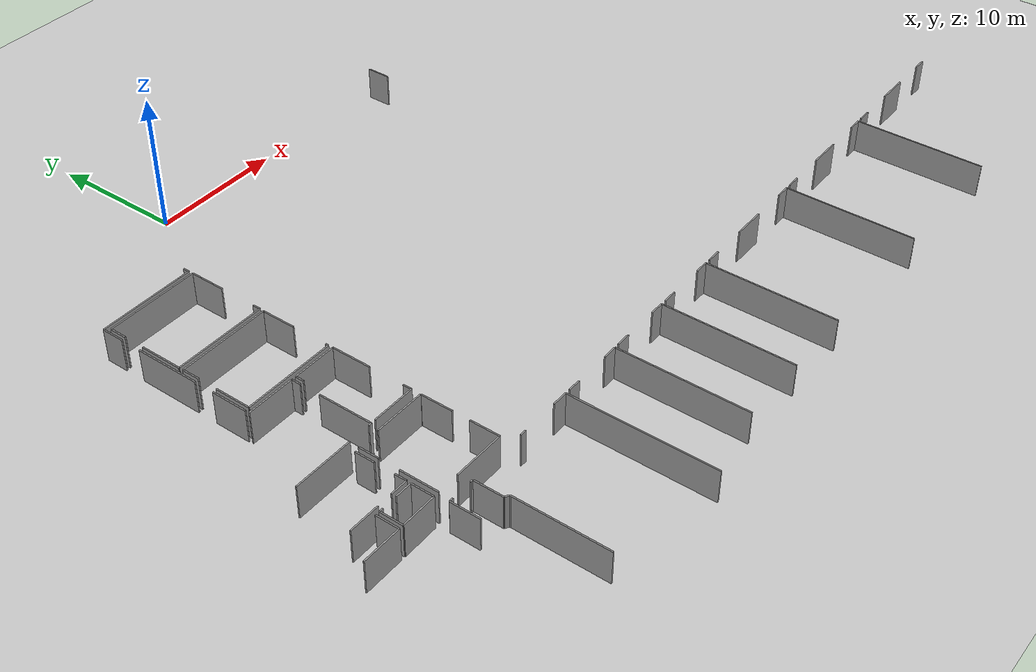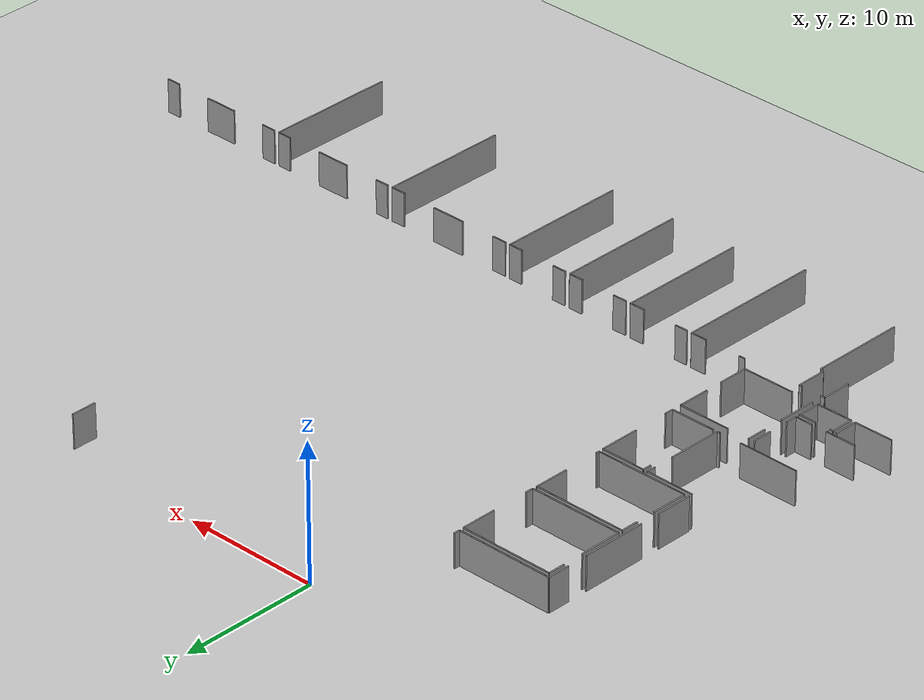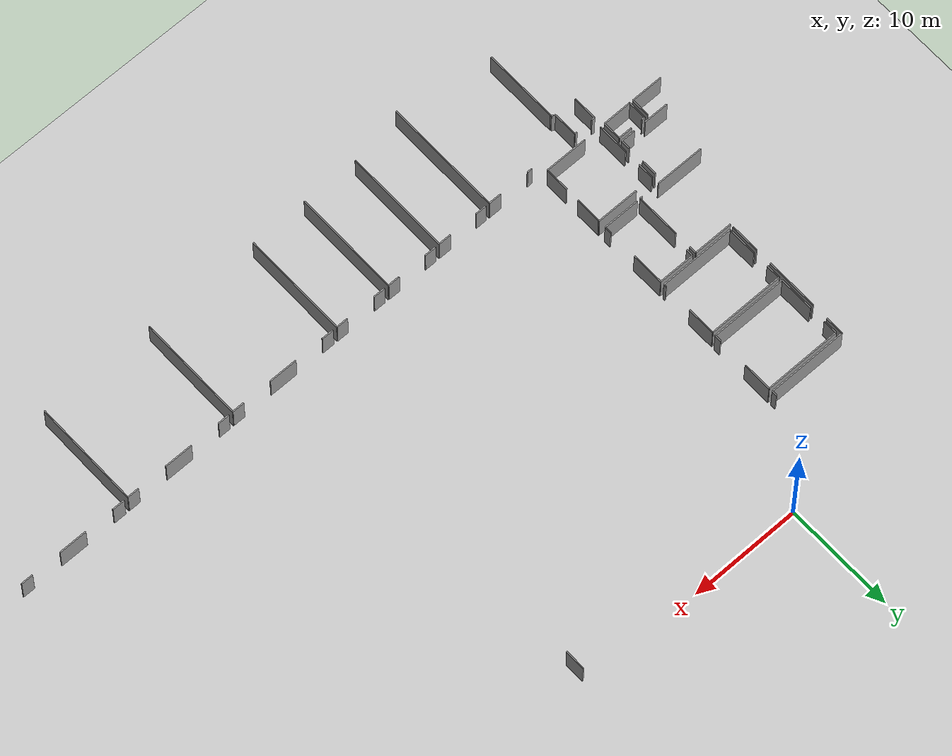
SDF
<sdf version="1.6">
 <world name="default">
  <model name="ground_plane">
   <static>1</static>
   <link name="link">
    <collision name="collision">
     <geometry><plane><normal>0 0 1</normal><size>100 100</size></plane></geometry>
     <surface><friction><ode><mu>100</mu><mu2>50</mu2></ode></friction></surface>
    </collision>
    <visual name="visual">
     <cast_shadows>0</cast_shadows>
     <geometry><plane><normal>0 0 1</normal><size>100 100</size></plane></geometry>
     <material>
      <script><uri>file://media/materials/scripts/gazebo.material</uri><name>Gazebo/Grey</name></script>
     </material>
    </visual>
   </link>
  </model>
  <model name="0510045922_A-40">
   <static>1</static>
   <link name="Wall_1295">
    <collision name="Wall_1295_Collision">
     <geometry><box><size>1.82423587723 0.1 2.5</size></box></geometry>
     <pose>0.912117938616 0 1.25 0 0 0</pose>
    </collision>
    <visual name="Wall_1295_Visual">
     <pose>0.912117938616 0 1.25 0 0 0</pose>
     <geometry><box><size>1.82423587723 0.1 2.5</size></box></geometry>
     <material>
      <script><uri>file://media/materials/scripts/gazebo.material</uri><name>Gazebo/Grey</name></script>
      <ambient>1 1 1 1</ambient>
     </material>
    </visual>
    <pose>155.149825253 -103.600279596 0 0 0 1.57079632679</pose>
   </link>
   <link name="Wall_1362">
    <collision name="Wall_1362_Collision">
     <geometry><box><size>2.65666899663 0.1 2.5</size></box></geometry>
     <pose>1.32833449832 0 1.25 0 0 0</pose>
    </collision>
    <visual name="Wall_1362_Visual">
     <pose>1.32833449832 0 1.25 0 0 0</pose>
     <geometry><box><size>2.65666899663 0.1 2.5</size></box></geometry>
     <material>
      <script><uri>file://media/materials/scripts/gazebo.material</uri><name>Gazebo/Grey</name></script>
      <ambient>1 1 1 1</ambient>
     </material>
    </visual>
    <pose>122.38830781 -120.836347461 0 0 0 1.57079632679</pose>
   </link>
   <link name="Wall_1363">
    <collision name="Wall_1363_Collision">
     <geometry><box><size>1.28919107835 0.1 2.5</size></box></geometry>
     <pose>0.644595539175 0 1.25 0 0 0</pose>
    </collision>
    <visual name="Wall_1363_Visual">
     <pose>0.644595539175 0 1.25 0 0 0</pose>
     <geometry><box><size>1.28919107835 0.1 2.5</size></box></geometry>
     <material>
      <script><uri>file://media/materials/scripts/gazebo.material</uri><name>Gazebo/Grey</name></script>
      <ambient>1 1 1 1</ambient>
     </material>
    </visual>
    <pose>122.38830781 -116.694007752 0 0 0 1.57079632679</pose>
   </link>
   <link name="Wall_1364">
    <collision name="Wall_1364_Collision">
     <geometry><box><size>6.90728855563 0.1 2.5</size></box></geometry>
     <pose>3.45364427782 0 1.25 0 0 0</pose>
    </collision>
    <visual name="Wall_1364_Visual">
     <pose>3.45364427782 0 1.25 0 0 0</pose>
     <geometry><box><size>6.90728855563 0.1 2.5</size></box></geometry>
     <material>
      <script><uri>file://media/materials/scripts/gazebo.material</uri><name>Gazebo/Grey</name></script>
      <ambient>1 1 1 1</ambient>
     </material>
    </visual>
    <pose>122.38830781 -115.404816674 0 0 0 0.0</pose>
   </link>
   <link name="Wall_1365">
    <collision name="Wall_1365_Collision">
     <geometry><box><size>2.5420346953 0.1 2.5</size></box></geometry>
     <pose>1.27101734765 0 1.25 0 0 0</pose>
    </collision>
    <visual name="Wall_1365_Visual">
     <pose>1.27101734765 0 1.25 0 0 0</pose>
     <geometry><box><size>2.5420346953 0.1 2.5</size></box></geometry>
     <material>
      <script><uri>file://media/materials/scripts/gazebo.material</uri><name>Gazebo/Grey</name></script>
      <ambient>1 1 1 1</ambient>
     </material>
    </visual>
    <pose>129.295596365 -115.404816674 0 0 0 -1.57079632679</pose>
   </link>
   <link name="Wall_1366">
    <collision name="Wall_1366_Collision">
     <geometry><box><size>0.224185041622 0.1 2.5</size></box></geometry>
     <pose>0.112092520811 0 1.25 0 0 0</pose>
    </collision>
    <visual name="Wall_1366_Visual">
     <pose>0.112092520811 0 1.25 0 0 0</pose>
     <geometry><box><size>0.224185041622 0.1 2.5</size></box></geometry>
     <material>
      <script><uri>file://media/materials/scripts/gazebo.material</uri><name>Gazebo/Grey</name></script>
      <ambient>1 1 1 1</ambient>
     </material>
    </visual>
    <pose>129.295596365 -120.597674271 0 0 0 -1.57079632679</pose>
   </link>
   <link name="Wall_1367">
    <collision name="Wall_1367_Collision">
     <geometry><box><size>6.90730375018 0.1 2.5</size></box></geometry>
     <pose>3.45365187509 0 1.25 0 0 0</pose>
    </collision>
    <visual name="Wall_1367_Visual">
     <pose>3.45365187509 0 1.25 0 0 0</pose>
     <geometry><box><size>6.90730375018 0.1 2.5</size></box></geometry>
     <material>
      <script><uri>file://media/materials/scripts/gazebo.material</uri><name>Gazebo/Grey</name></script>
      <ambient>1 1 1 1</ambient>
     </material>
    </visual>
    <pose>129.295596365 -120.821859312 0 0 0 -3.13949514057</pose>
   </link>
   <link name="Wall_1368">
    <collision name="Wall_1368_Collision">
     <geometry><box><size>3.14316578763 0.1 2.5</size></box></geometry>
     <pose>1.57158289382 0 1.25 0 0 0</pose>
    </collision>
    <visual name="Wall_1368_Visual">
     <pose>1.57158289382 0 1.25 0 0 0</pose>
     <geometry><box><size>3.14316578763 0.1 2.5</size></box></geometry>
     <material>
      <script><uri>file://media/materials/scripts/gazebo.material</uri><name>Gazebo/Grey</name></script>
      <ambient>1 1 1 1</ambient>
     </material>
    </visual>
    <pose>122.372802948 -115.076926987 0 0 0 1.57079632679</pose>
   </link>
   <link name="Wall_1369">
    <collision name="Wall_1369_Collision">
     <geometry><box><size>1.27089025863 0.1 2.5</size></box></geometry>
     <pose>0.635445129313 0 1.25 0 0 0</pose>
    </collision>
    <visual name="Wall_1369_Visual">
     <pose>0.635445129313 0 1.25 0 0 0</pose>
     <geometry><box><size>1.27089025863 0.1 2.5</size></box></geometry>
     <material>
      <script><uri>file://media/materials/scripts/gazebo.material</uri><name>Gazebo/Grey</name></script>
      <ambient>1 1 1 1</ambient>
     </material>
    </visual>
    <pose>122.372802948 -110.404880219 0 0 0 1.57079632679</pose>
   </link>
   <link name="Wall_1370">
    <collision name="Wall_1370_Collision">
     <geometry><box><size>6.95532820741 0.1 2.5</size></box></geometry>
     <pose>3.4776641037 0 1.25 0 0 0</pose>
    </collision>
    <visual name="Wall_1370_Visual">
     <pose>3.4776641037 0 1.25 0 0 0</pose>
     <geometry><box><size>6.95532820741 0.1 2.5</size></box></geometry>
     <material>
      <script><uri>file://media/materials/scripts/gazebo.material</uri><name>Gazebo/Grey</name></script>
      <ambient>1 1 1 1</ambient>
     </material>
    </visual>
    <pose>122.372802948 -109.13398996 0 0 0 0.0</pose>
   </link>
   <link name="Wall_1371">
    <collision name="Wall_1371_Collision">
     <geometry><box><size>2.62769269874 0.1 2.5</size></box></geometry>
     <pose>1.31384634937 0 1.25 0 0 0</pose>
    </collision>
    <visual name="Wall_1371_Visual">
     <pose>1.31384634937 0 1.25 0 0 0</pose>
     <geometry><box><size>2.62769269874 0.1 2.5</size></box></geometry>
     <material>
      <script><uri>file://media/materials/scripts/gazebo.material</uri><name>Gazebo/Grey</name></script>
      <ambient>1 1 1 1</ambient>
     </material>
    </visual>
    <pose>129.328131156 -109.13398996 0 0 0 -1.57079632679</pose>
   </link>
   <link name="Wall_1372">
    <collision name="Wall_1372_Collision">
     <geometry><box><size>0.592489038572 0.1 2.5</size></box></geometry>
     <pose>0.296244519286 0 1.25 0 0 0</pose>
    </collision>
    <visual name="Wall_1372_Visual">
     <pose>0.296244519286 0 1.25 0 0 0</pose>
     <geometry><box><size>0.592489038572 0.1 2.5</size></box></geometry>
     <material>
      <script><uri>file://media/materials/scripts/gazebo.material</uri><name>Gazebo/Grey</name></script>
      <ambient>1 1 1 1</ambient>
     </material>
    </visual>
    <pose>129.328131156 -114.484946305 0 0 0 -1.57079632679</pose>
   </link>
   <link name="Wall_1373">
    <collision name="Wall_1373_Collision">
     <geometry><box><size>6.95532822599 0.1 2.5</size></box></geometry>
     <pose>3.47766411299 0 1.25 0 0 0</pose>
    </collision>
    <visual name="Wall_1373_Visual">
     <pose>3.47766411299 0 1.25 0 0 0</pose>
     <geometry><box><size>6.95532822599 0.1 2.5</size></box></geometry>
     <material>
      <script><uri>file://media/materials/scripts/gazebo.material</uri><name>Gazebo/Grey</name></script>
      <ambient>1 1 1 1</ambient>
     </material>
    </visual>
    <pose>129.328131156 -115.077435343 0 0 0 3.14151956486</pose>
   </link>
   <link name="Wall_1394">
    <collision name="Wall_1394_Collision">
     <geometry><box><size>0.457012137002 0.1 2.5</size></box></geometry>
     <pose>0.228506068501 0 1.25 0 0 0</pose>
    </collision>
    <visual name="Wall_1394_Visual">
     <pose>0.228506068501 0 1.25 0 0 0</pose>
     <geometry><box><size>0.457012137002 0.1 2.5</size></box></geometry>
     <material>
      <script><uri>file://media/materials/scripts/gazebo.material</uri><name>Gazebo/Grey</name></script>
      <ambient>1 1 1 1</ambient>
     </material>
    </visual>
    <pose>129.304746775 -108.341716973 0 0 0 -1.57079632679</pose>
   </link>
   <link name="Wall_1395">
    <collision name="Wall_1395_Collision">
     <geometry><box><size>7.23873673508 0.1 2.5</size></box></geometry>
     <pose>3.61936836754 0 1.25 0 0 0</pose>
    </collision>
    <visual name="Wall_1395_Visual">
     <pose>3.61936836754 0 1.25 0 0 0</pose>
     <geometry><box><size>7.23873673508 0.1 2.5</size></box></geometry>
     <material>
      <script><uri>file://media/materials/scripts/gazebo.material</uri><name>Gazebo/Grey</name></script>
      <ambient>1 1 1 1</ambient>
     </material>
    </visual>
    <pose>129.304746775 -108.79872911 0 0 0 3.14159265359</pose>
   </link>
   <link name="Wall_1396">
    <collision name="Wall_1396_Collision">
     <geometry><box><size>1.64427781661 0.1 2.5</size></box></geometry>
     <pose>0.822138908305 0 1.25 0 0 0</pose>
    </collision>
    <visual name="Wall_1396_Visual">
     <pose>0.822138908305 0 1.25 0 0 0</pose>
     <geometry><box><size>1.64427781661 0.1 2.5</size></box></geometry>
     <material>
      <script><uri>file://media/materials/scripts/gazebo.material</uri><name>Gazebo/Grey</name></script>
      <ambient>1 1 1 1</ambient>
     </material>
    </visual>
    <pose>122.06601004 -108.79872911 0 0 0 -1.57079632679</pose>
   </link>
   <link name="Wall_1397">
    <collision name="Wall_1397_Collision">
     <geometry><box><size>4.76939696257 0.1 2.5</size></box></geometry>
     <pose>2.38469848129 0 1.25 0 0 0</pose>
    </collision>
    <visual name="Wall_1397_Visual">
     <pose>2.38469848129 0 1.25 0 0 0</pose>
     <geometry><box><size>4.76939696257 0.1 2.5</size></box></geometry>
     <material>
      <script><uri>file://media/materials/scripts/gazebo.material</uri><name>Gazebo/Grey</name></script>
      <ambient>1 1 1 1</ambient>
     </material>
    </visual>
    <pose>122.06601004 -111.964516744 0 0 0 -1.57079632679</pose>
   </link>
   <link name="Wall_1398">
    <collision name="Wall_1398_Collision">
     <geometry><box><size>2.66048166741 0.1 2.5</size></box></geometry>
     <pose>1.3302408337 0 1.25 0 0 0</pose>
    </collision>
    <visual name="Wall_1398_Visual">
     <pose>1.3302408337 0 1.25 0 0 0</pose>
     <geometry><box><size>2.66048166741 0.1 2.5</size></box></geometry>
     <material>
      <script><uri>file://media/materials/scripts/gazebo.material</uri><name>Gazebo/Grey</name></script>
      <ambient>1 1 1 1</ambient>
     </material>
    </visual>
    <pose>122.06601004 -118.218313529 0 0 0 -1.57079632679</pose>
   </link>
   <link name="Wall_1410">
    <collision name="Wall_1410_Collision">
     <geometry><box><size>3.30914405541 0.1 2.5</size></box></geometry>
     <pose>1.65457202771 0 1.25 0 0 0</pose>
    </collision>
    <visual name="Wall_1410_Visual">
     <pose>1.65457202771 0 1.25 0 0 0</pose>
     <geometry><box><size>3.30914405541 0.1 2.5</size></box></geometry>
     <material>
      <script><uri>file://media/materials/scripts/gazebo.material</uri><name>Gazebo/Grey</name></script>
      <ambient>1 1 1 1</ambient>
     </material>
    </visual>
    <pose>129.3172015 -127.382449006 0 0 0 3.14159265359</pose>
   </link>
   <link name="Wall_1411">
    <collision name="Wall_1411_Collision">
     <geometry><box><size>0.641799580606 0.1 2.5</size></box></geometry>
     <pose>0.320899790303 0 1.25 0 0 0</pose>
    </collision>
    <visual name="Wall_1411_Visual">
     <pose>0.320899790303 0 1.25 0 0 0</pose>
     <geometry><box><size>0.641799580606 0.1 2.5</size></box></geometry>
     <material>
      <script><uri>file://media/materials/scripts/gazebo.material</uri><name>Gazebo/Grey</name></script>
      <ambient>1 1 1 1</ambient>
     </material>
    </visual>
    <pose>126.008057444 -121.812645358 0 0 0 1.57079632679</pose>
   </link>
   <link name="Wall_1412">
    <collision name="Wall_1412_Collision">
     <geometry><box><size>3.30888987736 0.1 2.5</size></box></geometry>
     <pose>1.65444493868 0 1.25 0 0 0</pose>
    </collision>
    <visual name="Wall_1412_Visual">
     <pose>1.65444493868 0 1.25 0 0 0</pose>
     <geometry><box><size>3.30888987736 0.1 2.5</size></box></geometry>
     <material>
      <script><uri>file://media/materials/scripts/gazebo.material</uri><name>Gazebo/Grey</name></script>
      <ambient>1 1 1 1</ambient>
     </material>
    </visual>
    <pose>126.008057444 -121.170845777 0 0 0 0.0</pose>
   </link>
   <link name="Wall_1413">
    <collision name="Wall_1413_Collision">
     <geometry><box><size>2.93651903158 0.1 2.5</size></box></geometry>
     <pose>1.46825951579 0 1.25 0 0 0</pose>
    </collision>
    <visual name="Wall_1413_Visual">
     <pose>1.46825951579 0 1.25 0 0 0</pose>
     <geometry><box><size>2.93651903158 0.1 2.5</size></box></geometry>
     <material>
      <script><uri>file://media/materials/scripts/gazebo.material</uri><name>Gazebo/Grey</name></script>
      <ambient>1 1 1 1</ambient>
     </material>
    </visual>
    <pose>129.316947322 -121.170845777 0 0 0 -1.57079632679</pose>
   </link>
   <link name="Wall_1414">
    <collision name="Wall_1414_Collision">
     <geometry><box><size>0.637732782432 0.1 2.5</size></box></geometry>
     <pose>0.318866391216 0 1.25 0 0 0</pose>
    </collision>
    <visual name="Wall_1414_Visual">
     <pose>0.318866391216 0 1.25 0 0 0</pose>
     <geometry><box><size>0.637732782432 0.1 2.5</size></box></geometry>
     <material>
      <script><uri>file://media/materials/scripts/gazebo.material</uri><name>Gazebo/Grey</name></script>
      <ambient>1 1 1 1</ambient>
     </material>
    </visual>
    <pose>129.316947322 -126.744716274 0 0 0 -1.57039776165</pose>
   </link>
   <link name="Wall_1421">
    <collision name="Wall_1421_Collision">
     <geometry><box><size>3.61009086865 0.1 2.5</size></box></geometry>
     <pose>1.80504543433 0 1.25 0 0 0</pose>
    </collision>
    <visual name="Wall_1421_Visual">
     <pose>1.80504543433 0 1.25 0 0 0</pose>
     <geometry><box><size>3.61009086865 0.1 2.5</size></box></geometry>
     <material>
      <script><uri>file://media/materials/scripts/gazebo.material</uri><name>Gazebo/Grey</name></script>
      <ambient>1 1 1 1</ambient>
     </material>
    </visual>
    <pose>122.072364491 -121.16144119 0 0 0 0.0</pose>
   </link>
   <link name="Wall_1422">
    <collision name="Wall_1422_Collision">
     <geometry><box><size>0.690855944589 0.1 2.5</size></box></geometry>
     <pose>0.345427972295 0 1.25 0 0 0</pose>
    </collision>
    <visual name="Wall_1422_Visual">
     <pose>0.345427972295 0 1.25 0 0 0</pose>
     <geometry><box><size>0.690855944589 0.1 2.5</size></box></geometry>
     <material>
      <script><uri>file://media/materials/scripts/gazebo.material</uri><name>Gazebo/Grey</name></script>
      <ambient>1 1 1 1</ambient>
     </material>
    </visual>
    <pose>125.68245536 -121.16144119 0 0 0 -1.57079632679</pose>
   </link>
   <link name="Wall_1423">
    <collision name="Wall_1423_Collision">
     <geometry><box><size>4.01906335388 0.1 2.5</size></box></geometry>
     <pose>2.00953167694 0 1.25 0 0 0</pose>
    </collision>
    <visual name="Wall_1423_Visual">
     <pose>2.00953167694 0 1.25 0 0 0</pose>
     <geometry><box><size>4.01906335388 0.1 2.5</size></box></geometry>
     <material>
      <script><uri>file://media/materials/scripts/gazebo.material</uri><name>Gazebo/Grey</name></script>
      <ambient>1 1 1 1</ambient>
     </material>
    </visual>
    <pose>125.68245536 -123.382449006 0 0 0 -1.57079632679</pose>
   </link>
   <link name="Wall_1424">
    <collision name="Wall_1424_Collision">
     <geometry><box><size>0.240960793036 0.1 2.5</size></box></geometry>
     <pose>0.120480396518 0 1.25 0 0 0</pose>
    </collision>
    <visual name="Wall_1424_Visual">
     <pose>0.120480396518 0 1.25 0 0 0</pose>
     <geometry><box><size>0.240960793036 0.1 2.5</size></box></geometry>
     <material>
      <script><uri>file://media/materials/scripts/gazebo.material</uri><name>Gazebo/Grey</name></script>
      <ambient>1 1 1 1</ambient>
     </material>
    </visual>
    <pose>125.68245536 -127.401512359 0 0 0 3.14159265359</pose>
   </link>
   <link name="Wall_1425">
    <collision name="Wall_1425_Collision">
     <geometry><box><size>4.46007218897 0.1 2.5</size></box></geometry>
     <pose>2.23003609449 0 1.25 0 0 0</pose>
    </collision>
    <visual name="Wall_1425_Visual">
     <pose>2.23003609449 0 1.25 0 0 0</pose>
     <geometry><box><size>4.46007218897 0.1 2.5</size></box></geometry>
     <material>
      <script><uri>file://media/materials/scripts/gazebo.material</uri><name>Gazebo/Grey</name></script>
      <ambient>1 1 1 1</ambient>
     </material>
    </visual>
    <pose>123.782728601 -127.401512359 0 0 0 3.13948403416</pose>
   </link>
   <link name="Wall_1429">
    <collision name="Wall_1429_Collision">
     <geometry><box><size>1.69130075618 0.1 2.5</size></box></geometry>
     <pose>0.84565037809 0 1.25 0 0 0</pose>
    </collision>
    <visual name="Wall_1429_Visual">
     <pose>0.84565037809 0 1.25 0 0 0</pose>
     <geometry><box><size>1.69130075618 0.1 2.5</size></box></geometry>
     <material>
      <script><uri>file://media/materials/scripts/gazebo.material</uri><name>Gazebo/Grey</name></script>
      <ambient>1 1 1 1</ambient>
     </material>
    </visual>
    <pose>120.367846476 -132.261650886 0 0 0 -1.57079632679</pose>
   </link>
   <link name="Wall_1430">
    <collision name="Wall_1430_Collision">
     <geometry><box><size>2.91746056063 0.1 2.5</size></box></geometry>
     <pose>1.45873028031 0 1.25 0 0 0</pose>
    </collision>
    <visual name="Wall_1430_Visual">
     <pose>1.45873028031 0 1.25 0 0 0</pose>
     <geometry><box><size>2.91746056063 0.1 2.5</size></box></geometry>
     <material>
      <script><uri>file://media/materials/scripts/gazebo.material</uri><name>Gazebo/Grey</name></script>
      <ambient>1 1 1 1</ambient>
     </material>
    </visual>
    <pose>120.367846476 -133.952951643 0 0 0 -3.1397630686</pose>
   </link>
   <link name="Wall_1431">
    <collision name="Wall_1431_Collision">
     <geometry><box><size>1.68672555125 0.1 2.5</size></box></geometry>
     <pose>0.843362775624 0 1.25 0 0 0</pose>
    </collision>
    <visual name="Wall_1431_Visual">
     <pose>0.843362775624 0 1.25 0 0 0</pose>
     <geometry><box><size>1.68672555125 0.1 2.5</size></box></geometry>
     <material>
      <script><uri>file://media/materials/scripts/gazebo.material</uri><name>Gazebo/Grey</name></script>
      <ambient>1 1 1 1</ambient>
     </material>
    </visual>
    <pose>120.688873356 -133.962864587 0 0 0 1.57079632679</pose>
   </link>
   <link name="Wall_1432">
    <collision name="Wall_1432_Collision">
     <geometry><box><size>0.284171061829 0.1 2.5</size></box></geometry>
     <pose>0.142085530914 0 1.25 0 0 0</pose>
    </collision>
    <visual name="Wall_1432_Visual">
     <pose>0.142085530914 0 1.25 0 0 0</pose>
     <geometry><box><size>0.284171061829 0.1 2.5</size></box></geometry>
     <material>
      <script><uri>file://media/materials/scripts/gazebo.material</uri><name>Gazebo/Grey</name></script>
      <ambient>1 1 1 1</ambient>
     </material>
    </visual>
    <pose>120.688873356 -132.276139035 0 0 0 0.0</pose>
   </link>
   <link name="Wall_1433">
    <collision name="Wall_1433_Collision">
     <geometry><box><size>1.25665628773 0.1 2.5</size></box></geometry>
     <pose>0.628328143865 0 1.25 0 0 0</pose>
    </collision>
    <visual name="Wall_1433_Visual">
     <pose>0.628328143865 0 1.25 0 0 0</pose>
     <geometry><box><size>1.25665628773 0.1 2.5</size></box></geometry>
     <material>
      <script><uri>file://media/materials/scripts/gazebo.material</uri><name>Gazebo/Grey</name></script>
      <ambient>1 1 1 1</ambient>
     </material>
    </visual>
    <pose>122.092190379 -132.276139035 0 0 0 0.0</pose>
   </link>
   <link name="Wall_1434">
    <collision name="Wall_1434_Collision">
     <geometry><box><size>1.66207028023 0.1 2.5</size></box></geometry>
     <pose>0.831035140116 0 1.25 0 0 0</pose>
    </collision>
    <visual name="Wall_1434_Visual">
     <pose>0.831035140116 0 1.25 0 0 0</pose>
     <geometry><box><size>1.66207028023 0.1 2.5</size></box></geometry>
     <material>
      <script><uri>file://media/materials/scripts/gazebo.material</uri><name>Gazebo/Grey</name></script>
      <ambient>1 1 1 1</ambient>
     </material>
    </visual>
    <pose>123.348846667 -132.276139035 0 0 0 -1.57079632679</pose>
   </link>
   <link name="Wall_1435">
    <collision name="Wall_1435_Collision">
     <geometry><box><size>2.6600875736 0.1 2.5</size></box></geometry>
     <pose>1.3300437868 0 1.25 0 0 0</pose>
    </collision>
    <visual name="Wall_1435_Visual">
     <pose>1.3300437868 0 1.25 0 0 0</pose>
     <geometry><box><size>2.6600875736 0.1 2.5</size></box></geometry>
     <material>
      <script><uri>file://media/materials/scripts/gazebo.material</uri><name>Gazebo/Grey</name></script>
      <ambient>1 1 1 1</ambient>
     </material>
    </visual>
    <pose>123.348846667 -133.938209316 0 0 0 -3.13232392714</pose>
   </link>
   <link name="Wall_1440">
    <collision name="Wall_1440_Collision">
     <geometry><box><size>1.42746393849 0.1 2.5</size></box></geometry>
     <pose>0.713731969244 0 1.25 0 0 0</pose>
    </collision>
    <visual name="Wall_1440_Visual">
     <pose>0.713731969244 0 1.25 0 0 0</pose>
     <geometry><box><size>1.42746393849 0.1 2.5</size></box></geometry>
     <material>
      <script><uri>file://media/materials/scripts/gazebo.material</uri><name>Gazebo/Grey</name></script>
      <ambient>1 1 1 1</ambient>
     </material>
    </visual>
    <pose>123.370960158 -128.177263773 0 0 0 -1.57079632679</pose>
   </link>
   <link name="Wall_1441">
    <collision name="Wall_1441_Collision">
     <geometry><box><size>0.850988117176 0.1 2.5</size></box></geometry>
     <pose>0.425494058588 0 1.25 0 0 0</pose>
    </collision>
    <visual name="Wall_1441_Visual">
     <pose>0.425494058588 0 1.25 0 0 0</pose>
     <geometry><box><size>0.850988117176 0.1 2.5</size></box></geometry>
     <material>
      <script><uri>file://media/materials/scripts/gazebo.material</uri><name>Gazebo/Grey</name></script>
      <ambient>1 1 1 1</ambient>
     </material>
    </visual>
    <pose>123.370960158 -131.102344793 0 0 0 -1.57079632679</pose>
   </link>
   <link name="Wall_1442">
    <collision name="Wall_1442_Collision">
     <geometry><box><size>1.29859566626 0.1 2.5</size></box></geometry>
     <pose>0.649297833132 0 1.25 0 0 0</pose>
    </collision>
    <visual name="Wall_1442_Visual">
     <pose>0.649297833132 0 1.25 0 0 0</pose>
     <geometry><box><size>1.29859566626 0.1 2.5</size></box></geometry>
     <material>
      <script><uri>file://media/materials/scripts/gazebo.material</uri><name>Gazebo/Grey</name></script>
      <ambient>1 1 1 1</ambient>
     </material>
    </visual>
    <pose>123.370960158 -131.95333291 0 0 0 3.14159265359</pose>
   </link>
   <link name="Wall_1443">
    <collision name="Wall_1443_Collision">
     <geometry><box><size>2.28506068501 0.1 2.5</size></box></geometry>
     <pose>1.1425303425 0 1.25 0 0 0</pose>
    </collision>
    <visual name="Wall_1443_Visual">
     <pose>1.1425303425 0 1.25 0 0 0</pose>
     <geometry><box><size>2.28506068501 0.1 2.5</size></box></geometry>
     <material>
      <script><uri>file://media/materials/scripts/gazebo.material</uri><name>Gazebo/Grey</name></script>
      <ambient>1 1 1 1</ambient>
     </material>
    </visual>
    <pose>120.946864078 -131.95333291 0 0 0 3.14159265359</pose>
   </link>
   <link name="Wall_1447">
    <collision name="Wall_1447_Collision">
     <geometry><box><size>2.30869924382 0.1 2.5</size></box></geometry>
     <pose>1.15434962191 0 1.25 0 0 0</pose>
    </collision>
    <visual name="Wall_1447_Visual">
     <pose>1.15434962191 0 1.25 0 0 0</pose>
     <geometry><box><size>2.30869924382 0.1 2.5</size></box></geometry>
     <material>
      <script><uri>file://media/materials/scripts/gazebo.material</uri><name>Gazebo/Grey</name></script>
      <ambient>1 1 1 1</ambient>
     </material>
    </visual>
    <pose>129.300425748 -128.158962954 0 0 0 -1.57079632679</pose>
   </link>
   <link name="Wall_1448">
    <collision name="Wall_1448_Collision">
     <geometry><box><size>2.17881425939 0.1 2.5</size></box></geometry>
     <pose>1.08940712969 0 1.25 0 0 0</pose>
    </collision>
    <visual name="Wall_1448_Visual">
     <pose>1.08940712969 0 1.25 0 0 0</pose>
     <geometry><box><size>2.17881425939 0.1 2.5</size></box></geometry>
     <material>
      <script><uri>file://media/materials/scripts/gazebo.material</uri><name>Gazebo/Grey</name></script>
      <ambient>1 1 1 1</ambient>
     </material>
    </visual>
    <pose>129.300425748 -131.761174303 0 0 0 -1.57079632679</pose>
   </link>
   <link name="Wall_1449">
    <collision name="Wall_1449_Collision">
     <geometry><box><size>3.88867001334 0.1 2.5</size></box></geometry>
     <pose>1.94433500667 0 1.25 0 0 0</pose>
    </collision>
    <visual name="Wall_1449_Visual">
     <pose>1.94433500667 0 1.25 0 0 0</pose>
     <geometry><box><size>3.88867001334 0.1 2.5</size></box></geometry>
     <material>
      <script><uri>file://media/materials/scripts/gazebo.material</uri><name>Gazebo/Grey</name></script>
      <ambient>1 1 1 1</ambient>
     </material>
    </visual>
    <pose>129.300425748 -133.939988562 0 0 0 3.14159265359</pose>
   </link>
   <link name="Wall_1450">
    <collision name="Wall_1450_Collision">
     <geometry><box><size>2.84755671348 0.1 2.5</size></box></geometry>
     <pose>1.42377835674 0 1.25 0 0 0</pose>
    </collision>
    <visual name="Wall_1450_Visual">
     <pose>1.42377835674 0 1.25 0 0 0</pose>
     <geometry><box><size>2.84755671348 0.1 2.5</size></box></geometry>
     <material>
      <script><uri>file://media/materials/scripts/gazebo.material</uri><name>Gazebo/Grey</name></script>
      <ambient>1 1 1 1</ambient>
     </material>
    </visual>
    <pose>123.766461206 -133.939988562 0 0 0 1.57079632679</pose>
   </link>
   <link name="Wall_1451">
    <collision name="Wall_1451_Collision">
     <geometry><box><size>1.47347016585 0.1 2.5</size></box></geometry>
     <pose>0.736735082926 0 1.25 0 0 0</pose>
    </collision>
    <visual name="Wall_1451_Visual">
     <pose>0.736735082926 0 1.25 0 0 0</pose>
     <geometry><box><size>1.47347016585 0.1 2.5</size></box></geometry>
     <material>
      <script><uri>file://media/materials/scripts/gazebo.material</uri><name>Gazebo/Grey</name></script>
      <ambient>1 1 1 1</ambient>
     </material>
    </visual>
    <pose>123.766461206 -129.56583847 0 0 0 1.57079632679</pose>
   </link>
   <link name="Wall_1452">
    <collision name="Wall_1452_Collision">
     <geometry><box><size>3.84698481286 0.1 2.5</size></box></geometry>
     <pose>1.92349240643 0 1.25 0 0 0</pose>
    </collision>
    <visual name="Wall_1452_Visual">
     <pose>1.92349240643 0 1.25 0 0 0</pose>
     <geometry><box><size>3.84698481286 0.1 2.5</size></box></geometry>
     <material>
      <script><uri>file://media/materials/scripts/gazebo.material</uri><name>Gazebo/Grey</name></script>
      <ambient>1 1 1 1</ambient>
     </material>
    </visual>
    <pose>125.451661689 -128.092368304 0 0 0 0.0</pose>
   </link>
   <link name="Wall_1453">
    <collision name="Wall_1453_Collision">
     <geometry><box><size>0.0666184138701 0.1 2.5</size></box></geometry>
     <pose>0.0333092069351 0 1.25 0 0 0</pose>
    </collision>
    <visual name="Wall_1453_Visual">
     <pose>0.0333092069351 0 1.25 0 0 0</pose>
     <geometry><box><size>0.0666184138701 0.1 2.5</size></box></geometry>
     <material>
      <script><uri>file://media/materials/scripts/gazebo.material</uri><name>Gazebo/Grey</name></script>
      <ambient>1 1 1 1</ambient>
     </material>
    </visual>
    <pose>129.298646502 -128.092368304 0 0 0 -1.54408512407</pose>
   </link>
   <link name="Wall_1459">
    <collision name="Wall_1459_Collision">
     <geometry><box><size>2.16864713732 0.1 2.5</size></box></geometry>
     <pose>1.08432356866 0 1.25 0 0 0</pose>
    </collision>
    <visual name="Wall_1459_Visual">
     <pose>1.08432356866 0 1.25 0 0 0</pose>
     <geometry><box><size>2.16864713732 0.1 2.5</size></box></geometry>
     <material>
      <script><uri>file://media/materials/scripts/gazebo.material</uri><name>Gazebo/Grey</name></script>
      <ambient>1 1 1 1</ambient>
     </material>
    </visual>
    <pose>123.575065133 -137.006646756 0 0 0 1.57079632679</pose>
   </link>
   <link name="Wall_1460">
    <collision name="Wall_1460_Collision">
     <geometry><box><size>0.294846540001 0.1 2.5</size></box></geometry>
     <pose>0.147423270001 0 1.25 0 0 0</pose>
    </collision>
    <visual name="Wall_1460_Visual">
     <pose>0.147423270001 0 1.25 0 0 0</pose>
     <geometry><box><size>0.294846540001 0.1 2.5</size></box></geometry>
     <material>
      <script><uri>file://media/materials/scripts/gazebo.material</uri><name>Gazebo/Grey</name></script>
      <ambient>1 1 1 1</ambient>
     </material>
    </visual>
    <pose>123.575065133 -134.837999619 0 0 0 0.0</pose>
   </link>
   <link name="Wall_1461">
    <collision name="Wall_1461_Collision">
     <geometry><box><size>0.209442714622 0.1 2.5</size></box></geometry>
     <pose>0.104721357311 0 1.25 0 0 0</pose>
    </collision>
    <visual name="Wall_1461_Visual">
     <pose>0.104721357311 0 1.25 0 0 0</pose>
     <geometry><box><size>0.209442714622 0.1 2.5</size></box></geometry>
     <material>
      <script><uri>file://media/materials/scripts/gazebo.material</uri><name>Gazebo/Grey</name></script>
      <ambient>1 1 1 1</ambient>
     </material>
    </visual>
    <pose>125.422939569 -134.837999619 0 0 0 0.0</pose>
   </link>
   <link name="Wall_1462">
    <collision name="Wall_1462_Collision">
     <geometry><box><size>2.18567706679 0.1 2.5</size></box></geometry>
     <pose>1.09283853339 0 1.25 0 0 0</pose>
    </collision>
    <visual name="Wall_1462_Visual">
     <pose>1.09283853339 0 1.25 0 0 0</pose>
     <geometry><box><size>2.18567706679 0.1 2.5</size></box></geometry>
     <material>
      <script><uri>file://media/materials/scripts/gazebo.material</uri><name>Gazebo/Grey</name></script>
      <ambient>1 1 1 1</ambient>
     </material>
    </visual>
    <pose>125.632382284 -134.837999619 0 0 0 -1.57079632679</pose>
   </link>
   <link name="Wall_1463">
    <collision name="Wall_1463_Collision">
     <geometry><box><size>0.320921809923 0.1 2.5</size></box></geometry>
     <pose>0.160460904962 0 1.25 0 0 0</pose>
    </collision>
    <visual name="Wall_1463_Visual">
     <pose>0.160460904962 0 1.25 0 0 0</pose>
     <geometry><box><size>0.320921809923 0.1 2.5</size></box></geometry>
     <material>
      <script><uri>file://media/materials/scripts/gazebo.material</uri><name>Gazebo/Grey</name></script>
      <ambient>1 1 1 1</ambient>
     </material>
    </visual>
    <pose>125.632382284 -137.023676686 0 0 0 -0.511483428977</pose>
   </link>
   <link name="Wall_1464">
    <collision name="Wall_1464_Collision">
     <geometry><box><size>0.120684263588 0.1 2.5</size></box></geometry>
     <pose>0.0603421317942 0 1.25 0 0 0</pose>
    </collision>
    <visual name="Wall_1464_Visual">
     <pose>0.0603421317942 0 1.25 0 0 0</pose>
     <geometry><box><size>0.120684263588 0.1 2.5</size></box></geometry>
     <material>
      <script><uri>file://media/materials/scripts/gazebo.material</uri><name>Gazebo/Grey</name></script>
      <ambient>1 1 1 1</ambient>
     </material>
    </visual>
    <pose>125.912232319 -137.180758721 0 0 0 -1.41430394286</pose>
   </link>
   <link name="Wall_1465">
    <collision name="Wall_1465_Collision">
     <geometry><box><size>6.77079494186 0.1 2.5</size></box></geometry>
     <pose>3.38539747093 0 1.25 0 0 0</pose>
    </collision>
    <visual name="Wall_1465_Visual">
     <pose>3.38539747093 0 1.25 0 0 0</pose>
     <geometry><box><size>6.77079494186 0.1 2.5</size></box></geometry>
     <material>
      <script><uri>file://media/materials/scripts/gazebo.material</uri><name>Gazebo/Grey</name></script>
      <ambient>1 1 1 1</ambient>
     </material>
    </visual>
    <pose>125.931041495 -137.299968228 0 0 0 -1.57079632679</pose>
   </link>
   <link name="Wall_1552">
    <collision name="Wall_1552_Collision">
     <geometry><box><size>1.12448370083 0.1 2.5</size></box></geometry>
     <pose>0.562241850416 0 1.25 0 0 0</pose>
    </collision>
    <visual name="Wall_1552_Visual">
     <pose>0.562241850416 0 1.25 0 0 0</pose>
     <geometry><box><size>1.12448370083 0.1 2.5</size></box></geometry>
     <material>
      <script><uri>file://media/materials/scripts/gazebo.material</uri><name>Gazebo/Grey</name></script>
      <ambient>1 1 1 1</ambient>
     </material>
    </visual>
    <pose>171.458651585 -134.856554617 0 0 0 0.0</pose>
   </link>
   <link name="Wall_1553">
    <collision name="Wall_1553_Collision">
     <geometry><box><size>2.54330558556 0.1 2.5</size></box></geometry>
     <pose>1.27165279278 0 1.25 0 0 0</pose>
    </collision>
    <visual name="Wall_1553_Visual">
     <pose>1.27165279278 0 1.25 0 0 0</pose>
     <geometry><box><size>2.54330558556 0.1 2.5</size></box></geometry>
     <material>
      <script><uri>file://media/materials/scripts/gazebo.material</uri><name>Gazebo/Grey</name></script>
      <ambient>1 1 1 1</ambient>
     </material>
    </visual>
    <pose>175.252259007 -134.856554617 0 0 0 0.0</pose>
   </link>
   <link name="Wall_1554">
    <collision name="Wall_1554_Collision">
     <geometry><box><size>1.08483192476 0.1 2.5</size></box></geometry>
     <pose>0.542415962382 0 1.25 0 0 0</pose>
    </collision>
    <visual name="Wall_1554_Visual">
     <pose>0.542415962382 0 1.25 0 0 0</pose>
     <geometry><box><size>1.08483192476 0.1 2.5</size></box></geometry>
     <material>
      <script><uri>file://media/materials/scripts/gazebo.material</uri><name>Gazebo/Grey</name></script>
      <ambient>1 1 1 1</ambient>
     </material>
    </visual>
    <pose>180.486039271 -134.856554617 0 0 0 0.0</pose>
   </link>
   <link name="Wall_1560">
    <collision name="Wall_1560_Collision">
     <geometry><box><size>1.03704645104 0.1 2.5</size></box></geometry>
     <pose>0.518523225519 0 1.25 0 0 0</pose>
    </collision>
    <visual name="Wall_1560_Visual">
     <pose>0.518523225519 0 1.25 0 0 0</pose>
     <geometry><box><size>1.03704645104 0.1 2.5</size></box></geometry>
     <material>
      <script><uri>file://media/materials/scripts/gazebo.material</uri><name>Gazebo/Grey</name></script>
      <ambient>1 1 1 1</ambient>
     </material>
    </visual>
    <pose>161.023371672 -134.863671602 0 0 0 0.0</pose>
   </link>
   <link name="Wall_1561">
    <collision name="Wall_1561_Collision">
     <geometry><box><size>2.56236893944 0.1 2.5</size></box></geometry>
     <pose>1.28118446972 0 1.25 0 0 0</pose>
    </collision>
    <visual name="Wall_1561_Visual">
     <pose>1.28118446972 0 1.25 0 0 0</pose>
     <geometry><box><size>2.56236893944 0.1 2.5</size></box></geometry>
     <material>
      <script><uri>file://media/materials/scripts/gazebo.material</uri><name>Gazebo/Grey</name></script>
      <ambient>1 1 1 1</ambient>
     </material>
    </visual>
    <pose>164.758009786 -134.863671602 0 0 0 0.0</pose>
   </link>
   <link name="Wall_1562">
    <collision name="Wall_1562_Collision">
     <geometry><box><size>1.06475185868 0.1 2.5</size></box></geometry>
     <pose>0.532375929338 0 1.25 0 0 0</pose>
    </collision>
    <visual name="Wall_1562_Visual">
     <pose>0.532375929338 0 1.25 0 0 0</pose>
     <geometry><box><size>1.06475185868 0.1 2.5</size></box></geometry>
     <material>
      <script><uri>file://media/materials/scripts/gazebo.material</uri><name>Gazebo/Grey</name></script>
      <ambient>1 1 1 1</ambient>
     </material>
    </visual>
    <pose>170.016699498 -134.863671602 0 0 0 0.0</pose>
   </link>
   <link name="Wall_1563">
    <collision name="Wall_1563_Collision">
     <geometry><box><size>9.58988371354 0.1 2.5</size></box></geometry>
     <pose>4.79494185677 0 1.25 0 0 0</pose>
    </collision>
    <visual name="Wall_1563_Visual">
     <pose>4.79494185677 0 1.25 0 0 0</pose>
     <geometry><box><size>9.58988371354 0.1 2.5</size></box></geometry>
     <material>
      <script><uri>file://media/materials/scripts/gazebo.material</uri><name>Gazebo/Grey</name></script>
      <ambient>1 1 1 1</ambient>
     </material>
    </visual>
    <pose>171.081451357 -134.863671602 0 0 0 -1.57079632679</pose>
   </link>
   <link name="Wall_1568">
    <collision name="Wall_1568_Collision">
     <geometry><box><size>1.10186185423 0.1 2.5</size></box></geometry>
     <pose>0.550930927114 0 1.25 0 0 0</pose>
    </collision>
    <visual name="Wall_1568_Visual">
     <pose>0.550930927114 0 1.25 0 0 0</pose>
     <geometry><box><size>1.10186185423 0.1 2.5</size></box></geometry>
     <material>
      <script><uri>file://media/materials/scripts/gazebo.material</uri><name>Gazebo/Grey</name></script>
      <ambient>1 1 1 1</ambient>
     </material>
    </visual>
    <pose>150.495316769 -134.867484273 0 0 0 0.0</pose>
   </link>
   <link name="Wall_1569">
    <collision name="Wall_1569_Collision">
     <geometry><box><size>2.57990722501 0.1 2.5</size></box></geometry>
     <pose>1.28995361251 0 1.25 0 0 0</pose>
    </collision>
    <visual name="Wall_1569_Visual">
     <pose>1.28995361251 0 1.25 0 0 0</pose>
     <geometry><box><size>2.57990722501 0.1 2.5</size></box></geometry>
     <material>
      <script><uri>file://media/materials/scripts/gazebo.material</uri><name>Gazebo/Grey</name></script>
      <ambient>1 1 1 1</ambient>
     </material>
    </visual>
    <pose>154.269098303 -134.867484273 0 0 0 0.0</pose>
   </link>
   <link name="Wall_1570">
    <collision name="Wall_1570_Collision">
     <geometry><box><size>1.09474486878 0.1 2.5</size></box></geometry>
     <pose>0.54737243439 0 1.25 0 0 0</pose>
    </collision>
    <visual name="Wall_1570_Visual">
     <pose>0.54737243439 0 1.25 0 0 0</pose>
     <geometry><box><size>1.09474486878 0.1 2.5</size></box></geometry>
     <material>
      <script><uri>file://media/materials/scripts/gazebo.material</uri><name>Gazebo/Grey</name></script>
      <ambient>1 1 1 1</ambient>
     </material>
    </visual>
    <pose>159.519654318 -134.867484273 0 0 0 0.0</pose>
   </link>
   <link name="Wall_1571">
    <collision name="Wall_1571_Collision">
     <geometry><box><size>9.58759611108 0.1 2.5</size></box></geometry>
     <pose>4.79379805554 0 1.25 0 0 0</pose>
    </collision>
    <visual name="Wall_1571_Visual">
     <pose>4.79379805554 0 1.25 0 0 0</pose>
     <geometry><box><size>9.58759611108 0.1 2.5</size></box></geometry>
     <material>
      <script><uri>file://media/materials/scripts/gazebo.material</uri><name>Gazebo/Grey</name></script>
      <ambient>1 1 1 1</ambient>
     </material>
    </visual>
    <pose>160.614399187 -134.867484273 0 0 0 -1.57079632679</pose>
   </link>
   <link name="Wall_1576">
    <collision name="Wall_1576_Collision">
     <geometry><box><size>1.05560144881 0.1 2.5</size></box></geometry>
     <pose>0.527800724407 0 1.25 0 0 0</pose>
    </collision>
    <visual name="Wall_1576_Visual">
     <pose>0.527800724407 0 1.25 0 0 0</pose>
     <geometry><box><size>1.05560144881 0.1 2.5</size></box></geometry>
     <material>
      <script><uri>file://media/materials/scripts/gazebo.material</uri><name>Gazebo/Grey</name></script>
      <ambient>1 1 1 1</ambient>
     </material>
    </visual>
    <pose>145.276024655 -134.85604626 0 0 0 0.0</pose>
   </link>
   <link name="Wall_1577">
    <collision name="Wall_1577_Collision">
     <geometry><box><size>1.06297261231 0.1 2.5</size></box></geometry>
     <pose>0.531486306157 0 1.25 0 0 0</pose>
    </collision>
    <visual name="Wall_1577_Visual">
     <pose>0.531486306157 0 1.25 0 0 0</pose>
     <geometry><box><size>1.06297261231 0.1 2.5</size></box></geometry>
     <material>
      <script><uri>file://media/materials/scripts/gazebo.material</uri><name>Gazebo/Grey</name></script>
      <ambient>1 1 1 1</ambient>
     </material>
    </visual>
    <pose>149.045993518 -134.85604626 0 0 0 0.0</pose>
   </link>
   <link name="Wall_1578">
    <collision name="Wall_1578_Collision">
     <geometry><box><size>9.60259261613 0.1 2.5</size></box></geometry>
     <pose>4.80129630806 0 1.25 0 0 0</pose>
    </collision>
    <visual name="Wall_1578_Visual">
     <pose>4.80129630806 0 1.25 0 0 0</pose>
     <geometry><box><size>9.60259261613 0.1 2.5</size></box></geometry>
     <material>
      <script><uri>file://media/materials/scripts/gazebo.material</uri><name>Gazebo/Grey</name></script>
      <ambient>1 1 1 1</ambient>
     </material>
    </visual>
    <pose>150.108966131 -134.85604626 0 0 0 -1.57079632679</pose>
   </link>
   <link name="Wall_1582">
    <collision name="Wall_1582_Collision">
     <geometry><box><size>1.08762788333 0.1 2.5</size></box></geometry>
     <pose>0.543813941666 0 1.25 0 0 0</pose>
    </collision>
    <visual name="Wall_1582_Visual">
     <pose>0.543813941666 0 1.25 0 0 0</pose>
     <geometry><box><size>1.08762788333 0.1 2.5</size></box></geometry>
     <material>
      <script><uri>file://media/materials/scripts/gazebo.material</uri><name>Gazebo/Grey</name></script>
      <ambient>1 1 1 1</ambient>
     </material>
    </visual>
    <pose>140.030043846 -134.837999619 0 0 0 0.0</pose>
   </link>
   <link name="Wall_1583">
    <collision name="Wall_1583_Collision">
     <geometry><box><size>1.08839041749 0.1 2.5</size></box></geometry>
     <pose>0.544195208744 0 1.25 0 0 0</pose>
    </collision>
    <visual name="Wall_1583_Visual">
     <pose>0.544195208744 0 1.25 0 0 0</pose>
     <geometry><box><size>1.08839041749 0.1 2.5</size></box></geometry>
     <material>
      <script><uri>file://media/materials/scripts/gazebo.material</uri><name>Gazebo/Grey</name></script>
      <ambient>1 1 1 1</ambient>
     </material>
    </visual>
    <pose>143.783745314 -134.837999619 0 0 0 0.0</pose>
   </link>
   <link name="Wall_1584">
    <collision name="Wall_1584_Collision">
     <geometry><box><size>9.63233144818 0.1 2.5</size></box></geometry>
     <pose>4.81616572409 0 1.25 0 0 0</pose>
    </collision>
    <visual name="Wall_1584_Visual">
     <pose>4.81616572409 0 1.25 0 0 0</pose>
     <geometry><box><size>9.63233144818 0.1 2.5</size></box></geometry>
     <material>
      <script><uri>file://media/materials/scripts/gazebo.material</uri><name>Gazebo/Grey</name></script>
      <ambient>1 1 1 1</ambient>
     </material>
    </visual>
    <pose>144.872135731 -134.837999619 0 0 0 -1.57079632679</pose>
   </link>
   <link name="Wall_1588">
    <collision name="Wall_1588_Collision">
     <geometry><box><size>0.983923238228 0.1 2.5</size></box></geometry>
     <pose>0.491961619114 0 1.25 0 0 0</pose>
    </collision>
    <visual name="Wall_1588_Visual">
     <pose>0.491961619114 0 1.25 0 0 0</pose>
     <geometry><box><size>0.983923238228 0.1 2.5</size></box></geometry>
     <material>
      <script><uri>file://media/materials/scripts/gazebo.material</uri><name>Gazebo/Grey</name></script>
      <ambient>1 1 1 1</ambient>
     </material>
    </visual>
    <pose>134.886242613 -134.846895851 0 0 0 0.0</pose>
   </link>
   <link name="Wall_1589">
    <collision name="Wall_1589_Collision">
     <geometry><box><size>1.12143356421 0.1 2.5</size></box></geometry>
     <pose>0.560716782106 0 1.25 0 0 0</pose>
    </collision>
    <visual name="Wall_1589_Visual">
     <pose>0.560716782106 0 1.25 0 0 0</pose>
     <geometry><box><size>1.12143356421 0.1 2.5</size></box></geometry>
     <material>
      <script><uri>file://media/materials/scripts/gazebo.material</uri><name>Gazebo/Grey</name></script>
      <ambient>1 1 1 1</ambient>
     </material>
    </visual>
    <pose>138.537764504 -134.846895851 0 0 0 0.0</pose>
   </link>
   <link name="Wall_1590">
    <collision name="Wall_1590_Collision">
     <geometry><box><size>9.60462604054 0.1 2.5</size></box></geometry>
     <pose>4.80231302027 0 1.25 0 0 0</pose>
    </collision>
    <visual name="Wall_1590_Visual">
     <pose>4.80231302027 0 1.25 0 0 0</pose>
     <geometry><box><size>9.60462604054 0.1 2.5</size></box></geometry>
     <material>
      <script><uri>file://media/materials/scripts/gazebo.material</uri><name>Gazebo/Grey</name></script>
      <ambient>1 1 1 1</ambient>
     </material>
    </visual>
    <pose>139.659198068 -134.846895851 0 0 0 -1.57079632679</pose>
   </link>
   <link name="Wall_1594">
    <collision name="Wall_1594_Collision">
     <geometry><box><size>0.487513503209 0.1 2.5</size></box></geometry>
     <pose>0.243756751604 0 1.25 0 0 0</pose>
    </collision>
    <visual name="Wall_1594_Visual">
     <pose>0.243756751604 0 1.25 0 0 0</pose>
     <geometry><box><size>0.487513503209 0.1 2.5</size></box></geometry>
     <material>
      <script><uri>file://media/materials/scripts/gazebo.material</uri><name>Gazebo/Grey</name></script>
      <ambient>1 1 1 1</ambient>
     </material>
    </visual>
    <pose>130.08558175 -134.838762153 0 0 0 0.0</pose>
   </link>
   <link name="Wall_1595">
    <collision name="Wall_1595_Collision">
     <geometry><box><size>1.19463684311 0.1 2.5</size></box></geometry>
     <pose>0.597318421554 0 1.25 0 0 0</pose>
    </collision>
    <visual name="Wall_1595_Visual">
     <pose>0.597318421554 0 1.25 0 0 0</pose>
     <geometry><box><size>1.19463684311 0.1 2.5</size></box></geometry>
     <material>
      <script><uri>file://media/materials/scripts/gazebo.material</uri><name>Gazebo/Grey</name></script>
      <ambient>1 1 1 1</ambient>
     </material>
    </visual>
    <pose>133.316184787 -134.838762153 0 0 0 0.0</pose>
   </link>
   <link name="Wall_1596">
    <collision name="Wall_1596_Collision">
     <geometry><box><size>10.6663277626 0.1 2.5</size></box></geometry>
     <pose>5.3331638813 0 1.25 0 0 0</pose>
    </collision>
    <visual name="Wall_1596_Visual">
     <pose>5.3331638813 0 1.25 0 0 0</pose>
     <geometry><box><size>10.6663277626 0.1 2.5</size></box></geometry>
     <material>
      <script><uri>file://media/materials/scripts/gazebo.material</uri><name>Gazebo/Grey</name></script>
      <ambient>1 1 1 1</ambient>
     </material>
    </visual>
    <pose>134.510821631 -134.838762153 0 0 0 -1.57079632679</pose>
   </link>
   <pose>-134.15 101.210036856 0 0 0 0</pose>
  </model>
 </world>
</sdf>
